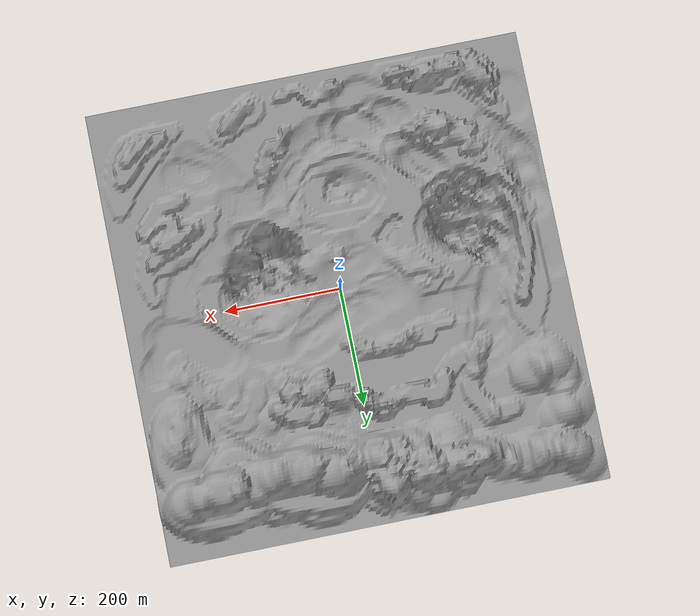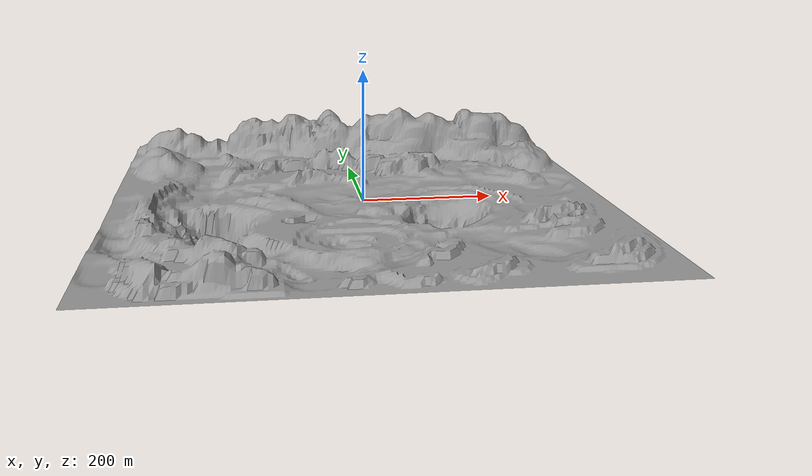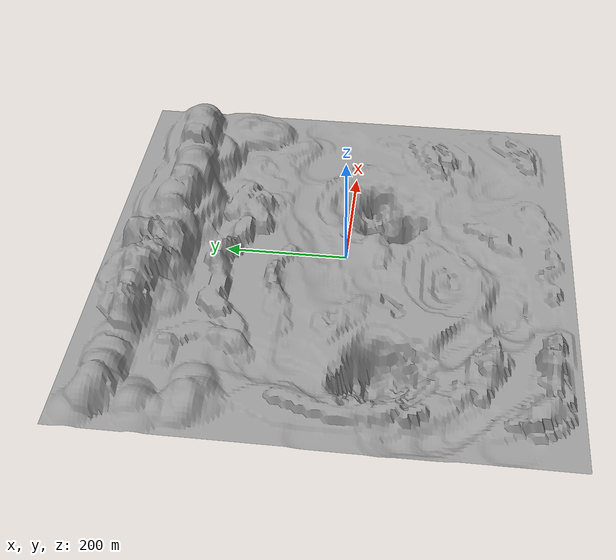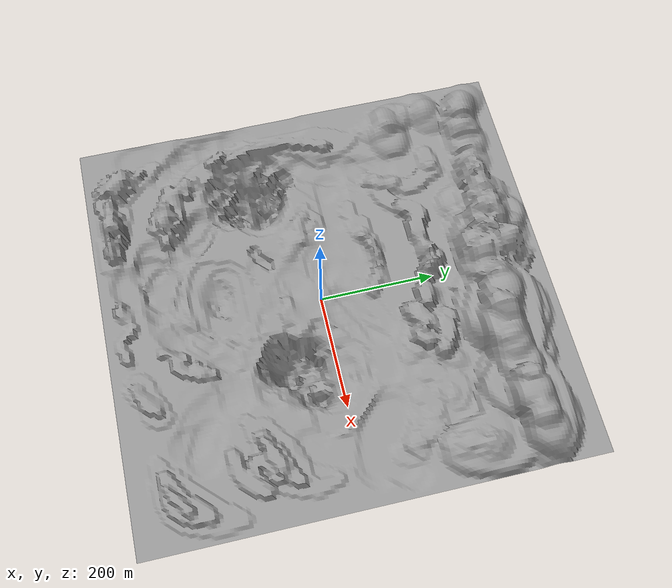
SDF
<?xml version="1.0" ?>
<sdf version="1.4">
  <world name="terrain_world">

    <include>
      <pose> 10 0 0 0.785 0 0</pose>
      <uri>model://sun</uri>

    </include>

    <model name="terrain_mesh">
      <!--position the mesh where you want it to be-->

      <pose>0 0 0 1.57 0 0 </pose> <!-- rotate Pi/2 about x axis-->
      <static>true </static>

      <link name="terrain">
        <visual name="visual">
          <geometry>
            <mesh>
              <uri>model://mesh/terrain.dae</uri>
              <scale>10 10 10</scale> <!--make it larger -->
            </mesh>
          </geometry>
        </visual>

        <collision name="collision">
          <geometry>
            <mesh>
              <uri>model://mesh/terrain.dae</uri>
              <scale>10 10 10</scale> <!--make it larger -->
            </mesh>
          </geometry>
        </collision>

      </link>

    </model>
  </world>
</sdf>
